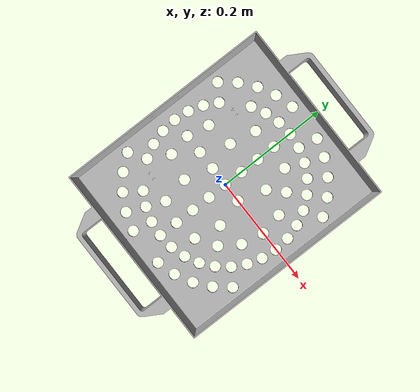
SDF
<?xml version="1.0" ?>
<sdf version="1.6">
  <model name="CSSD Tray">
    <static>false</static>
    <link name="tray">
      <pose> 0 0 0 0 0 3.14 </pose>
       <inertial>
         <!-- tentative mass -->
        <mass>5.5</mass>
        <pose>0 0 0 0 0 0</pose>
        <inertia>
          <ixx>0.1026</ixx>
          <ixy>0</ixy>
          <ixz>0</ixz>
          <iyy>0.206</iyy>
          <iyz>0</iyz>
          <izz>0.155</izz>
        </inertia>
      </inertial>

      <!-- Extents: (+/- 0.15, +/- 0.175, [0.058, 0.06]),  -->
      <collision name="tray floor">
        <pose> 0.0  0.0  0.06  0.0  0.0  0.0</pose>
        <geometry>
          <box>
            <size>0.30 0.35 0.004</size>
          </box>
        </geometry>
      </collision>
      <collision name="tray pegs">
        <geometry>
          <mesh>
            <scale>1 1 1</scale>
            <uri>model://CSSD Tray/meshes/tray_pegs.stl</uri>
          </mesh>
        </geometry>
      </collision>

      <!-- Center Bottom: (0.128, 0.153, 0.01) -->
      <!-- radius: 0.015 -->
      <!-- height: 0.048-->
      <collision name="front left leg">
        <pose>0.128 0.153 0.034 0 0 0</pose>
        <geometry>
          <cylinder>
            <radius>0.015</radius>
            <length>0.048</length>
          </cylinder>
        </geometry>
      </collision>
      <collision name="front right leg">
        <pose>-0.128 0.153 0.034 0 0 0</pose>
        <geometry>
          <cylinder>
            <radius>0.015</radius>
            <length>0.048</length>
          </cylinder>
        </geometry>
      </collision>
      <collision name="back left leg">
        <pose>0.128 -0.153 0.034 0 0 0</pose>
        <geometry>
          <cylinder>
            <radius>0.015</radius>
            <length>0.048</length>
          </cylinder>
        </geometry>
      </collision>
      <collision name="back right leg">
        <pose>-0.128 -0.153 0.034 0 0 0</pose>
        <geometry>
          <cylinder>
            <radius>0.015</radius>
            <length>0.048</length>
          </cylinder>
        </geometry>
      </collision>

      <visual name='visual'>
        <geometry>
          <mesh>
            <scale>1 1 1</scale>
            <uri>model://CSSD Tray/meshes/Tray_Assem_Locating_Stand-off.STL</uri>
          </mesh>
        </geometry>
      </visual>
    </link>
  </model>
</sdf>
